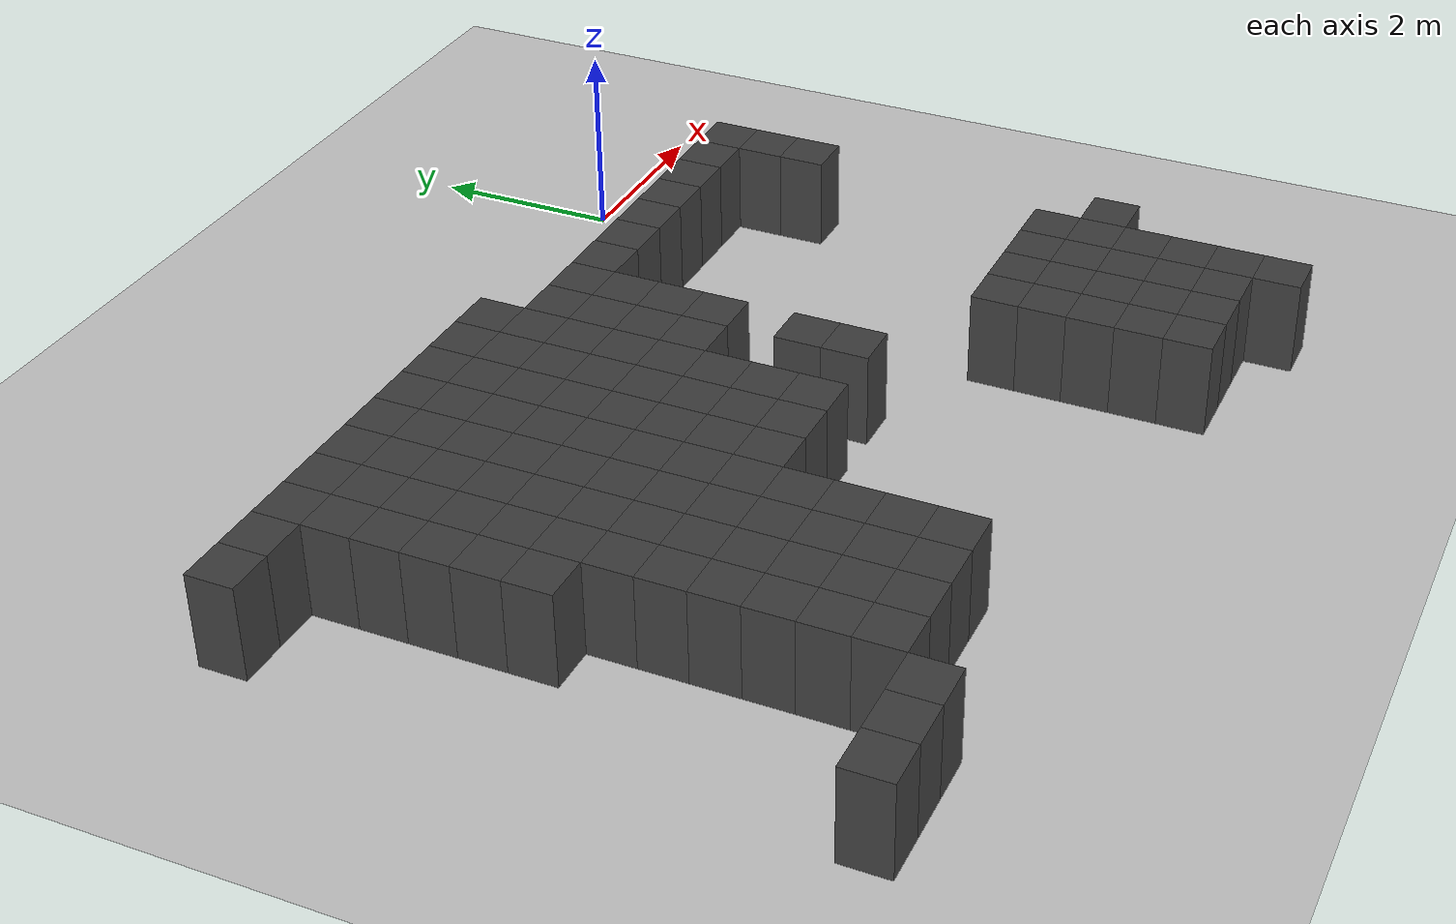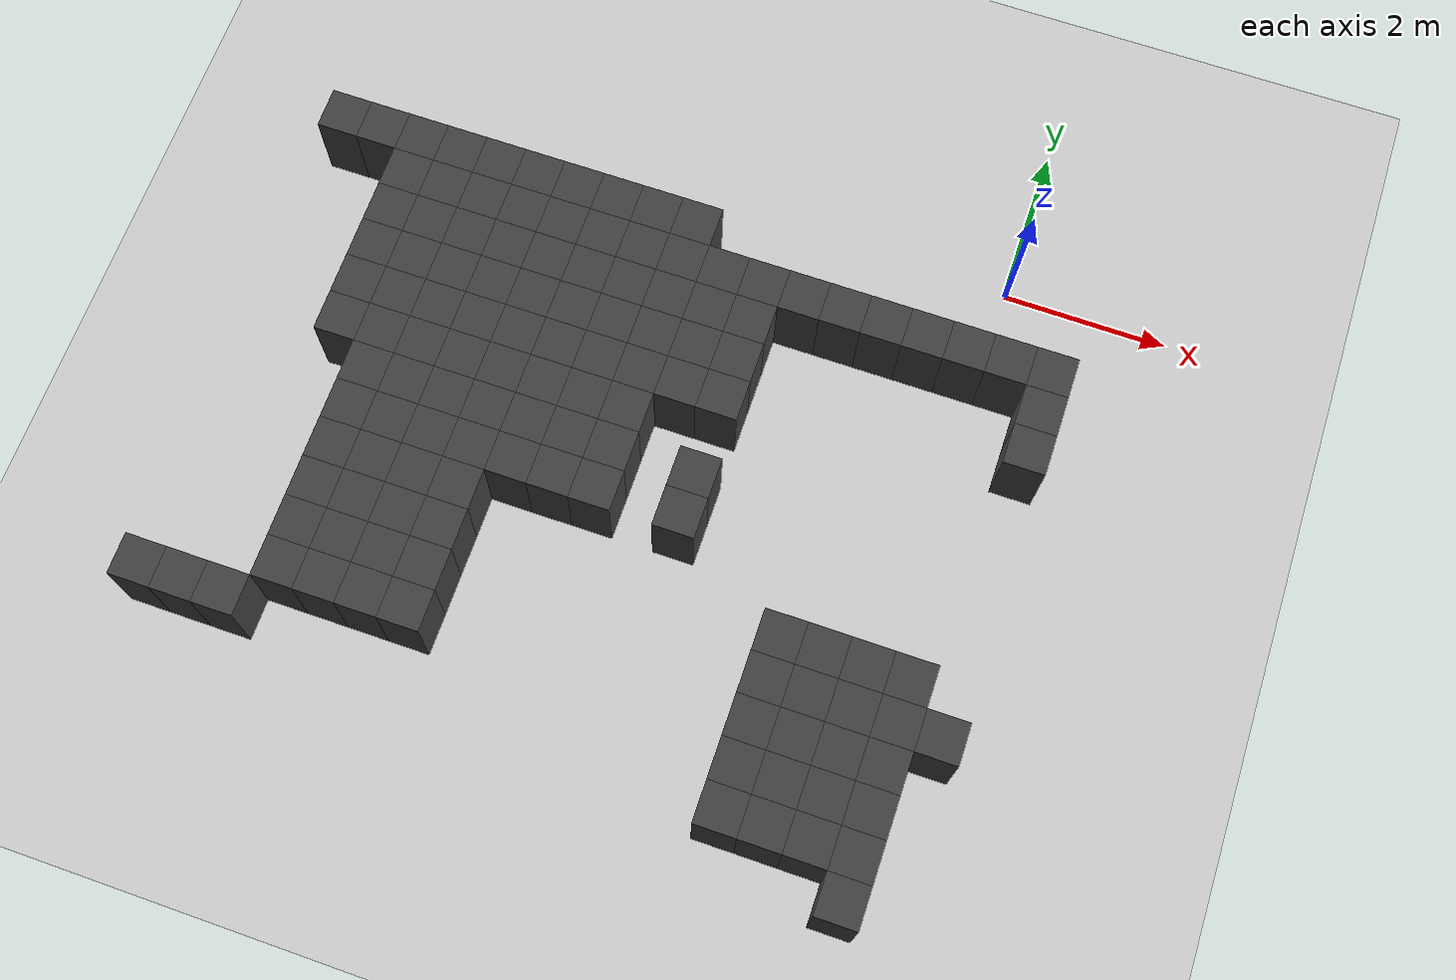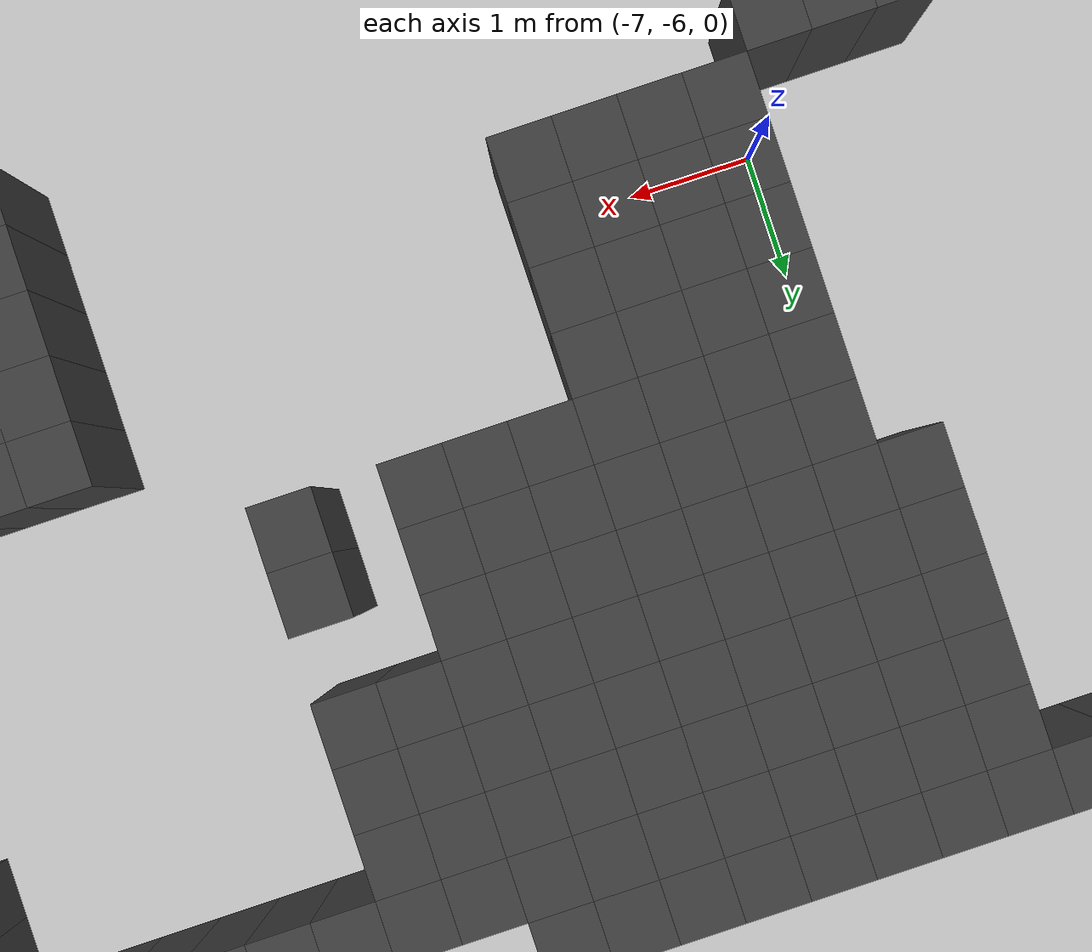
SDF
<sdf version="1.7">
 <world name="map_14668">
  <model name="ground_plane">
   <static>true</static>
   <link name="link">
    <collision name="collision">
     <geometry><plane><normal>0 0 1</normal><size>200 200</size></plane></geometry>
    </collision>
    <visual name="visual">
     <geometry><plane><normal>0 0 1</normal><size>200 200</size></plane></geometry>
     <material><ambient>0.8 0.8 0.8 1</ambient><diffuse>0.8 0.8 0.8 1</diffuse></material>
    </visual>
   </link>
  </model>
  <model name="maze_environment">
   <static>true</static>
   <link name="wall_1007">
    <pose>-8.250 -0.750 0.500 0 0 0</pose>
    <collision name="col"><geometry><box><size>0.5 0.5 1.0</size></box></geometry></collision>
    <visual name="vis">
     <geometry><box><size>0.5 0.5 1.0</size></box></geometry>
     <material><ambient>0.15 0.15 0.15 1</ambient><diffuse>0.25 0.25 0.25 1</diffuse></material>
    </visual>
   </link>
   <link name="wall_1008">
    <pose>-7.750 -0.750 0.500 0 0 0</pose>
    <collision name="col"><geometry><box><size>0.5 0.5 1.0</size></box></geometry></collision>
    <visual name="vis">
     <geometry><box><size>0.5 0.5 1.0</size></box></geometry>
     <material><ambient>0.15 0.15 0.15 1</ambient><diffuse>0.25 0.25 0.25 1</diffuse></material>
    </visual>
   </link>
   <link name="wall_1009">
    <pose>-7.250 -0.750 0.500 0 0 0</pose>
    <collision name="col"><geometry><box><size>0.5 0.5 1.0</size></box></geometry></collision>
    <visual name="vis">
     <geometry><box><size>0.5 0.5 1.0</size></box></geometry>
     <material><ambient>0.15 0.15 0.15 1</ambient><diffuse>0.25 0.25 0.25 1</diffuse></material>
    </visual>
   </link>
   <link name="wall_1010">
    <pose>-6.750 -0.750 0.500 0 0 0</pose>
    <collision name="col"><geometry><box><size>0.5 0.5 1.0</size></box></geometry></collision>
    <visual name="vis">
     <geometry><box><size>0.5 0.5 1.0</size></box></geometry>
     <material><ambient>0.15 0.15 0.15 1</ambient><diffuse>0.25 0.25 0.25 1</diffuse></material>
    </visual>
   </link>
   <link name="wall_1011">
    <pose>-6.250 -0.750 0.500 0 0 0</pose>
    <collision name="col"><geometry><box><size>0.5 0.5 1.0</size></box></geometry></collision>
    <visual name="vis">
     <geometry><box><size>0.5 0.5 1.0</size></box></geometry>
     <material><ambient>0.15 0.15 0.15 1</ambient><diffuse>0.25 0.25 0.25 1</diffuse></material>
    </visual>
   </link>
   <link name="wall_1012">
    <pose>-5.750 -0.750 0.500 0 0 0</pose>
    <collision name="col"><geometry><box><size>0.5 0.5 1.0</size></box></geometry></collision>
    <visual name="vis">
     <geometry><box><size>0.5 0.5 1.0</size></box></geometry>
     <material><ambient>0.15 0.15 0.15 1</ambient><diffuse>0.25 0.25 0.25 1</diffuse></material>
    </visual>
   </link>
   <link name="wall_1013">
    <pose>-5.250 -0.750 0.500 0 0 0</pose>
    <collision name="col"><geometry><box><size>0.5 0.5 1.0</size></box></geometry></collision>
    <visual name="vis">
     <geometry><box><size>0.5 0.5 1.0</size></box></geometry>
     <material><ambient>0.15 0.15 0.15 1</ambient><diffuse>0.25 0.25 0.25 1</diffuse></material>
    </visual>
   </link>
   <link name="wall_1014">
    <pose>-4.750 -0.750 0.500 0 0 0</pose>
    <collision name="col"><geometry><box><size>0.5 0.5 1.0</size></box></geometry></collision>
    <visual name="vis">
     <geometry><box><size>0.5 0.5 1.0</size></box></geometry>
     <material><ambient>0.15 0.15 0.15 1</ambient><diffuse>0.25 0.25 0.25 1</diffuse></material>
    </visual>
   </link>
   <link name="wall_1015">
    <pose>-4.250 -0.750 0.500 0 0 0</pose>
    <collision name="col"><geometry><box><size>0.5 0.5 1.0</size></box></geometry></collision>
    <visual name="vis">
     <geometry><box><size>0.5 0.5 1.0</size></box></geometry>
     <material><ambient>0.15 0.15 0.15 1</ambient><diffuse>0.25 0.25 0.25 1</diffuse></material>
    </visual>
   </link>
   <link name="wall_1016">
    <pose>-3.750 -0.750 0.500 0 0 0</pose>
    <collision name="col"><geometry><box><size>0.5 0.5 1.0</size></box></geometry></collision>
    <visual name="vis">
     <geometry><box><size>0.5 0.5 1.0</size></box></geometry>
     <material><ambient>0.15 0.15 0.15 1</ambient><diffuse>0.25 0.25 0.25 1</diffuse></material>
    </visual>
   </link>
   <link name="wall_1051">
    <pose>-7.250 -1.250 0.500 0 0 0</pose>
    <collision name="col"><geometry><box><size>0.5 0.5 1.0</size></box></geometry></collision>
    <visual name="vis">
     <geometry><box><size>0.5 0.5 1.0</size></box></geometry>
     <material><ambient>0.15 0.15 0.15 1</ambient><diffuse>0.25 0.25 0.25 1</diffuse></material>
    </visual>
   </link>
   <link name="wall_1052">
    <pose>-6.750 -1.250 0.500 0 0 0</pose>
    <collision name="col"><geometry><box><size>0.5 0.5 1.0</size></box></geometry></collision>
    <visual name="vis">
     <geometry><box><size>0.5 0.5 1.0</size></box></geometry>
     <material><ambient>0.15 0.15 0.15 1</ambient><diffuse>0.25 0.25 0.25 1</diffuse></material>
    </visual>
   </link>
   <link name="wall_1053">
    <pose>-6.250 -1.250 0.500 0 0 0</pose>
    <collision name="col"><geometry><box><size>0.5 0.5 1.0</size></box></geometry></collision>
    <visual name="vis">
     <geometry><box><size>0.5 0.5 1.0</size></box></geometry>
     <material><ambient>0.15 0.15 0.15 1</ambient><diffuse>0.25 0.25 0.25 1</diffuse></material>
    </visual>
   </link>
   <link name="wall_1054">
    <pose>-5.750 -1.250 0.500 0 0 0</pose>
    <collision name="col"><geometry><box><size>0.5 0.5 1.0</size></box></geometry></collision>
    <visual name="vis">
     <geometry><box><size>0.5 0.5 1.0</size></box></geometry>
     <material><ambient>0.15 0.15 0.15 1</ambient><diffuse>0.25 0.25 0.25 1</diffuse></material>
    </visual>
   </link>
   <link name="wall_1055">
    <pose>-5.250 -1.250 0.500 0 0 0</pose>
    <collision name="col"><geometry><box><size>0.5 0.5 1.0</size></box></geometry></collision>
    <visual name="vis">
     <geometry><box><size>0.5 0.5 1.0</size></box></geometry>
     <material><ambient>0.15 0.15 0.15 1</ambient><diffuse>0.25 0.25 0.25 1</diffuse></material>
    </visual>
   </link>
   <link name="wall_1056">
    <pose>-4.750 -1.250 0.500 0 0 0</pose>
    <collision name="col"><geometry><box><size>0.5 0.5 1.0</size></box></geometry></collision>
    <visual name="vis">
     <geometry><box><size>0.5 0.5 1.0</size></box></geometry>
     <material><ambient>0.15 0.15 0.15 1</ambient><diffuse>0.25 0.25 0.25 1</diffuse></material>
    </visual>
   </link>
   <link name="wall_1057">
    <pose>-4.250 -1.250 0.500 0 0 0</pose>
    <collision name="col"><geometry><box><size>0.5 0.5 1.0</size></box></geometry></collision>
    <visual name="vis">
     <geometry><box><size>0.5 0.5 1.0</size></box></geometry>
     <material><ambient>0.15 0.15 0.15 1</ambient><diffuse>0.25 0.25 0.25 1</diffuse></material>
    </visual>
   </link>
   <link name="wall_1058">
    <pose>-3.750 -1.250 0.500 0 0 0</pose>
    <collision name="col"><geometry><box><size>0.5 0.5 1.0</size></box></geometry></collision>
    <visual name="vis">
     <geometry><box><size>0.5 0.5 1.0</size></box></geometry>
     <material><ambient>0.15 0.15 0.15 1</ambient><diffuse>0.25 0.25 0.25 1</diffuse></material>
    </visual>
   </link>
   <link name="wall_1059">
    <pose>-3.250 -1.250 0.500 0 0 0</pose>
    <collision name="col"><geometry><box><size>0.5 0.5 1.0</size></box></geometry></collision>
    <visual name="vis">
     <geometry><box><size>0.5 0.5 1.0</size></box></geometry>
     <material><ambient>0.15 0.15 0.15 1</ambient><diffuse>0.25 0.25 0.25 1</diffuse></material>
    </visual>
   </link>
   <link name="wall_1060">
    <pose>-2.750 -1.250 0.500 0 0 0</pose>
    <collision name="col"><geometry><box><size>0.5 0.5 1.0</size></box></geometry></collision>
    <visual name="vis">
     <geometry><box><size>0.5 0.5 1.0</size></box></geometry>
     <material><ambient>0.15 0.15 0.15 1</ambient><diffuse>0.25 0.25 0.25 1</diffuse></material>
    </visual>
   </link>
   <link name="wall_1061">
    <pose>-2.250 -1.250 0.500 0 0 0</pose>
    <collision name="col"><geometry><box><size>0.5 0.5 1.0</size></box></geometry></collision>
    <visual name="vis">
     <geometry><box><size>0.5 0.5 1.0</size></box></geometry>
     <material><ambient>0.15 0.15 0.15 1</ambient><diffuse>0.25 0.25 0.25 1</diffuse></material>
    </visual>
   </link>
   <link name="wall_1062">
    <pose>-1.750 -1.250 0.500 0 0 0</pose>
    <collision name="col"><geometry><box><size>0.5 0.5 1.0</size></box></geometry></collision>
    <visual name="vis">
     <geometry><box><size>0.5 0.5 1.0</size></box></geometry>
     <material><ambient>0.15 0.15 0.15 1</ambient><diffuse>0.25 0.25 0.25 1</diffuse></material>
    </visual>
   </link>
   <link name="wall_1063">
    <pose>-1.250 -1.250 0.500 0 0 0</pose>
    <collision name="col"><geometry><box><size>0.5 0.5 1.0</size></box></geometry></collision>
    <visual name="vis">
     <geometry><box><size>0.5 0.5 1.0</size></box></geometry>
     <material><ambient>0.15 0.15 0.15 1</ambient><diffuse>0.25 0.25 0.25 1</diffuse></material>
    </visual>
   </link>
   <link name="wall_1064">
    <pose>-0.750 -1.250 0.500 0 0 0</pose>
    <collision name="col"><geometry><box><size>0.5 0.5 1.0</size></box></geometry></collision>
    <visual name="vis">
     <geometry><box><size>0.5 0.5 1.0</size></box></geometry>
     <material><ambient>0.15 0.15 0.15 1</ambient><diffuse>0.25 0.25 0.25 1</diffuse></material>
    </visual>
   </link>
   <link name="wall_1065">
    <pose>-0.250 -1.250 0.500 0 0 0</pose>
    <collision name="col"><geometry><box><size>0.5 0.5 1.0</size></box></geometry></collision>
    <visual name="vis">
     <geometry><box><size>0.5 0.5 1.0</size></box></geometry>
     <material><ambient>0.15 0.15 0.15 1</ambient><diffuse>0.25 0.25 0.25 1</diffuse></material>
    </visual>
   </link>
   <link name="wall_1066">
    <pose>0.250 -1.250 0.500 0 0 0</pose>
    <collision name="col"><geometry><box><size>0.5 0.5 1.0</size></box></geometry></collision>
    <visual name="vis">
     <geometry><box><size>0.5 0.5 1.0</size></box></geometry>
     <material><ambient>0.15 0.15 0.15 1</ambient><diffuse>0.25 0.25 0.25 1</diffuse></material>
    </visual>
   </link>
   <link name="wall_1067">
    <pose>0.750 -1.250 0.500 0 0 0</pose>
    <collision name="col"><geometry><box><size>0.5 0.5 1.0</size></box></geometry></collision>
    <visual name="vis">
     <geometry><box><size>0.5 0.5 1.0</size></box></geometry>
     <material><ambient>0.15 0.15 0.15 1</ambient><diffuse>0.25 0.25 0.25 1</diffuse></material>
    </visual>
   </link>
   <link name="wall_1093">
    <pose>-7.250 -1.750 0.500 0 0 0</pose>
    <collision name="col"><geometry><box><size>0.5 0.5 1.0</size></box></geometry></collision>
    <visual name="vis">
     <geometry><box><size>0.5 0.5 1.0</size></box></geometry>
     <material><ambient>0.15 0.15 0.15 1</ambient><diffuse>0.25 0.25 0.25 1</diffuse></material>
    </visual>
   </link>
   <link name="wall_1094">
    <pose>-6.750 -1.750 0.500 0 0 0</pose>
    <collision name="col"><geometry><box><size>0.5 0.5 1.0</size></box></geometry></collision>
    <visual name="vis">
     <geometry><box><size>0.5 0.5 1.0</size></box></geometry>
     <material><ambient>0.15 0.15 0.15 1</ambient><diffuse>0.25 0.25 0.25 1</diffuse></material>
    </visual>
   </link>
   <link name="wall_1095">
    <pose>-6.250 -1.750 0.500 0 0 0</pose>
    <collision name="col"><geometry><box><size>0.5 0.5 1.0</size></box></geometry></collision>
    <visual name="vis">
     <geometry><box><size>0.5 0.5 1.0</size></box></geometry>
     <material><ambient>0.15 0.15 0.15 1</ambient><diffuse>0.25 0.25 0.25 1</diffuse></material>
    </visual>
   </link>
   <link name="wall_1096">
    <pose>-5.750 -1.750 0.500 0 0 0</pose>
    <collision name="col"><geometry><box><size>0.5 0.5 1.0</size></box></geometry></collision>
    <visual name="vis">
     <geometry><box><size>0.5 0.5 1.0</size></box></geometry>
     <material><ambient>0.15 0.15 0.15 1</ambient><diffuse>0.25 0.25 0.25 1</diffuse></material>
    </visual>
   </link>
   <link name="wall_1097">
    <pose>-5.250 -1.750 0.500 0 0 0</pose>
    <collision name="col"><geometry><box><size>0.5 0.5 1.0</size></box></geometry></collision>
    <visual name="vis">
     <geometry><box><size>0.5 0.5 1.0</size></box></geometry>
     <material><ambient>0.15 0.15 0.15 1</ambient><diffuse>0.25 0.25 0.25 1</diffuse></material>
    </visual>
   </link>
   <link name="wall_1098">
    <pose>-4.750 -1.750 0.500 0 0 0</pose>
    <collision name="col"><geometry><box><size>0.5 0.5 1.0</size></box></geometry></collision>
    <visual name="vis">
     <geometry><box><size>0.5 0.5 1.0</size></box></geometry>
     <material><ambient>0.15 0.15 0.15 1</ambient><diffuse>0.25 0.25 0.25 1</diffuse></material>
    </visual>
   </link>
   <link name="wall_1099">
    <pose>-4.250 -1.750 0.500 0 0 0</pose>
    <collision name="col"><geometry><box><size>0.5 0.5 1.0</size></box></geometry></collision>
    <visual name="vis">
     <geometry><box><size>0.5 0.5 1.0</size></box></geometry>
     <material><ambient>0.15 0.15 0.15 1</ambient><diffuse>0.25 0.25 0.25 1</diffuse></material>
    </visual>
   </link>
   <link name="wall_1100">
    <pose>-3.750 -1.750 0.500 0 0 0</pose>
    <collision name="col"><geometry><box><size>0.5 0.5 1.0</size></box></geometry></collision>
    <visual name="vis">
     <geometry><box><size>0.5 0.5 1.0</size></box></geometry>
     <material><ambient>0.15 0.15 0.15 1</ambient><diffuse>0.25 0.25 0.25 1</diffuse></material>
    </visual>
   </link>
   <link name="wall_1101">
    <pose>-3.250 -1.750 0.500 0 0 0</pose>
    <collision name="col"><geometry><box><size>0.5 0.5 1.0</size></box></geometry></collision>
    <visual name="vis">
     <geometry><box><size>0.5 0.5 1.0</size></box></geometry>
     <material><ambient>0.15 0.15 0.15 1</ambient><diffuse>0.25 0.25 0.25 1</diffuse></material>
    </visual>
   </link>
   <link name="wall_1102">
    <pose>-2.750 -1.750 0.500 0 0 0</pose>
    <collision name="col"><geometry><box><size>0.5 0.5 1.0</size></box></geometry></collision>
    <visual name="vis">
     <geometry><box><size>0.5 0.5 1.0</size></box></geometry>
     <material><ambient>0.15 0.15 0.15 1</ambient><diffuse>0.25 0.25 0.25 1</diffuse></material>
    </visual>
   </link>
   <link name="wall_1103">
    <pose>0.750 -1.750 0.500 0 0 0</pose>
    <collision name="col"><geometry><box><size>0.5 0.5 1.0</size></box></geometry></collision>
    <visual name="vis">
     <geometry><box><size>0.5 0.5 1.0</size></box></geometry>
     <material><ambient>0.15 0.15 0.15 1</ambient><diffuse>0.25 0.25 0.25 1</diffuse></material>
    </visual>
   </link>
   <link name="wall_1129">
    <pose>-7.250 -2.250 0.500 0 0 0</pose>
    <collision name="col"><geometry><box><size>0.5 0.5 1.0</size></box></geometry></collision>
    <visual name="vis">
     <geometry><box><size>0.5 0.5 1.0</size></box></geometry>
     <material><ambient>0.15 0.15 0.15 1</ambient><diffuse>0.25 0.25 0.25 1</diffuse></material>
    </visual>
   </link>
   <link name="wall_1130">
    <pose>-6.750 -2.250 0.500 0 0 0</pose>
    <collision name="col"><geometry><box><size>0.5 0.5 1.0</size></box></geometry></collision>
    <visual name="vis">
     <geometry><box><size>0.5 0.5 1.0</size></box></geometry>
     <material><ambient>0.15 0.15 0.15 1</ambient><diffuse>0.25 0.25 0.25 1</diffuse></material>
    </visual>
   </link>
   <link name="wall_1131">
    <pose>-6.250 -2.250 0.500 0 0 0</pose>
    <collision name="col"><geometry><box><size>0.5 0.5 1.0</size></box></geometry></collision>
    <visual name="vis">
     <geometry><box><size>0.5 0.5 1.0</size></box></geometry>
     <material><ambient>0.15 0.15 0.15 1</ambient><diffuse>0.25 0.25 0.25 1</diffuse></material>
    </visual>
   </link>
   <link name="wall_1132">
    <pose>-5.750 -2.250 0.500 0 0 0</pose>
    <collision name="col"><geometry><box><size>0.5 0.5 1.0</size></box></geometry></collision>
    <visual name="vis">
     <geometry><box><size>0.5 0.5 1.0</size></box></geometry>
     <material><ambient>0.15 0.15 0.15 1</ambient><diffuse>0.25 0.25 0.25 1</diffuse></material>
    </visual>
   </link>
   <link name="wall_1133">
    <pose>-5.250 -2.250 0.500 0 0 0</pose>
    <collision name="col"><geometry><box><size>0.5 0.5 1.0</size></box></geometry></collision>
    <visual name="vis">
     <geometry><box><size>0.5 0.5 1.0</size></box></geometry>
     <material><ambient>0.15 0.15 0.15 1</ambient><diffuse>0.25 0.25 0.25 1</diffuse></material>
    </visual>
   </link>
   <link name="wall_1134">
    <pose>-4.750 -2.250 0.500 0 0 0</pose>
    <collision name="col"><geometry><box><size>0.5 0.5 1.0</size></box></geometry></collision>
    <visual name="vis">
     <geometry><box><size>0.5 0.5 1.0</size></box></geometry>
     <material><ambient>0.15 0.15 0.15 1</ambient><diffuse>0.25 0.25 0.25 1</diffuse></material>
    </visual>
   </link>
   <link name="wall_1135">
    <pose>-4.250 -2.250 0.500 0 0 0</pose>
    <collision name="col"><geometry><box><size>0.5 0.5 1.0</size></box></geometry></collision>
    <visual name="vis">
     <geometry><box><size>0.5 0.5 1.0</size></box></geometry>
     <material><ambient>0.15 0.15 0.15 1</ambient><diffuse>0.25 0.25 0.25 1</diffuse></material>
    </visual>
   </link>
   <link name="wall_1136">
    <pose>-3.750 -2.250 0.500 0 0 0</pose>
    <collision name="col"><geometry><box><size>0.5 0.5 1.0</size></box></geometry></collision>
    <visual name="vis">
     <geometry><box><size>0.5 0.5 1.0</size></box></geometry>
     <material><ambient>0.15 0.15 0.15 1</ambient><diffuse>0.25 0.25 0.25 1</diffuse></material>
    </visual>
   </link>
   <link name="wall_1137">
    <pose>-3.250 -2.250 0.500 0 0 0</pose>
    <collision name="col"><geometry><box><size>0.5 0.5 1.0</size></box></geometry></collision>
    <visual name="vis">
     <geometry><box><size>0.5 0.5 1.0</size></box></geometry>
     <material><ambient>0.15 0.15 0.15 1</ambient><diffuse>0.25 0.25 0.25 1</diffuse></material>
    </visual>
   </link>
   <link name="wall_1138">
    <pose>-2.750 -2.250 0.500 0 0 0</pose>
    <collision name="col"><geometry><box><size>0.5 0.5 1.0</size></box></geometry></collision>
    <visual name="vis">
     <geometry><box><size>0.5 0.5 1.0</size></box></geometry>
     <material><ambient>0.15 0.15 0.15 1</ambient><diffuse>0.25 0.25 0.25 1</diffuse></material>
    </visual>
   </link>
   <link name="wall_1139">
    <pose>0.750 -2.250 0.500 0 0 0</pose>
    <collision name="col"><geometry><box><size>0.5 0.5 1.0</size></box></geometry></collision>
    <visual name="vis">
     <geometry><box><size>0.5 0.5 1.0</size></box></geometry>
     <material><ambient>0.15 0.15 0.15 1</ambient><diffuse>0.25 0.25 0.25 1</diffuse></material>
    </visual>
   </link>
   <link name="wall_1159">
    <pose>-7.250 -2.750 0.500 0 0 0</pose>
    <collision name="col"><geometry><box><size>0.5 0.5 1.0</size></box></geometry></collision>
    <visual name="vis">
     <geometry><box><size>0.5 0.5 1.0</size></box></geometry>
     <material><ambient>0.15 0.15 0.15 1</ambient><diffuse>0.25 0.25 0.25 1</diffuse></material>
    </visual>
   </link>
   <link name="wall_1160">
    <pose>-6.750 -2.750 0.500 0 0 0</pose>
    <collision name="col"><geometry><box><size>0.5 0.5 1.0</size></box></geometry></collision>
    <visual name="vis">
     <geometry><box><size>0.5 0.5 1.0</size></box></geometry>
     <material><ambient>0.15 0.15 0.15 1</ambient><diffuse>0.25 0.25 0.25 1</diffuse></material>
    </visual>
   </link>
   <link name="wall_1161">
    <pose>-6.250 -2.750 0.500 0 0 0</pose>
    <collision name="col"><geometry><box><size>0.5 0.5 1.0</size></box></geometry></collision>
    <visual name="vis">
     <geometry><box><size>0.5 0.5 1.0</size></box></geometry>
     <material><ambient>0.15 0.15 0.15 1</ambient><diffuse>0.25 0.25 0.25 1</diffuse></material>
    </visual>
   </link>
   <link name="wall_1162">
    <pose>-5.750 -2.750 0.500 0 0 0</pose>
    <collision name="col"><geometry><box><size>0.5 0.5 1.0</size></box></geometry></collision>
    <visual name="vis">
     <geometry><box><size>0.5 0.5 1.0</size></box></geometry>
     <material><ambient>0.15 0.15 0.15 1</ambient><diffuse>0.25 0.25 0.25 1</diffuse></material>
    </visual>
   </link>
   <link name="wall_1163">
    <pose>-5.250 -2.750 0.500 0 0 0</pose>
    <collision name="col"><geometry><box><size>0.5 0.5 1.0</size></box></geometry></collision>
    <visual name="vis">
     <geometry><box><size>0.5 0.5 1.0</size></box></geometry>
     <material><ambient>0.15 0.15 0.15 1</ambient><diffuse>0.25 0.25 0.25 1</diffuse></material>
    </visual>
   </link>
   <link name="wall_1164">
    <pose>-4.750 -2.750 0.500 0 0 0</pose>
    <collision name="col"><geometry><box><size>0.5 0.5 1.0</size></box></geometry></collision>
    <visual name="vis">
     <geometry><box><size>0.5 0.5 1.0</size></box></geometry>
     <material><ambient>0.15 0.15 0.15 1</ambient><diffuse>0.25 0.25 0.25 1</diffuse></material>
    </visual>
   </link>
   <link name="wall_1165">
    <pose>-4.250 -2.750 0.500 0 0 0</pose>
    <collision name="col"><geometry><box><size>0.5 0.5 1.0</size></box></geometry></collision>
    <visual name="vis">
     <geometry><box><size>0.5 0.5 1.0</size></box></geometry>
     <material><ambient>0.15 0.15 0.15 1</ambient><diffuse>0.25 0.25 0.25 1</diffuse></material>
    </visual>
   </link>
   <link name="wall_1166">
    <pose>-3.750 -2.750 0.500 0 0 0</pose>
    <collision name="col"><geometry><box><size>0.5 0.5 1.0</size></box></geometry></collision>
    <visual name="vis">
     <geometry><box><size>0.5 0.5 1.0</size></box></geometry>
     <material><ambient>0.15 0.15 0.15 1</ambient><diffuse>0.25 0.25 0.25 1</diffuse></material>
    </visual>
   </link>
   <link name="wall_1167">
    <pose>-3.250 -2.750 0.500 0 0 0</pose>
    <collision name="col"><geometry><box><size>0.5 0.5 1.0</size></box></geometry></collision>
    <visual name="vis">
     <geometry><box><size>0.5 0.5 1.0</size></box></geometry>
     <material><ambient>0.15 0.15 0.15 1</ambient><diffuse>0.25 0.25 0.25 1</diffuse></material>
    </visual>
   </link>
   <link name="wall_1168">
    <pose>-2.750 -2.750 0.500 0 0 0</pose>
    <collision name="col"><geometry><box><size>0.5 0.5 1.0</size></box></geometry></collision>
    <visual name="vis">
     <geometry><box><size>0.5 0.5 1.0</size></box></geometry>
     <material><ambient>0.15 0.15 0.15 1</ambient><diffuse>0.25 0.25 0.25 1</diffuse></material>
    </visual>
   </link>
   <link name="wall_1182">
    <pose>-7.250 -3.250 0.500 0 0 0</pose>
    <collision name="col"><geometry><box><size>0.5 0.5 1.0</size></box></geometry></collision>
    <visual name="vis">
     <geometry><box><size>0.5 0.5 1.0</size></box></geometry>
     <material><ambient>0.15 0.15 0.15 1</ambient><diffuse>0.25 0.25 0.25 1</diffuse></material>
    </visual>
   </link>
   <link name="wall_1183">
    <pose>-6.750 -3.250 0.500 0 0 0</pose>
    <collision name="col"><geometry><box><size>0.5 0.5 1.0</size></box></geometry></collision>
    <visual name="vis">
     <geometry><box><size>0.5 0.5 1.0</size></box></geometry>
     <material><ambient>0.15 0.15 0.15 1</ambient><diffuse>0.25 0.25 0.25 1</diffuse></material>
    </visual>
   </link>
   <link name="wall_1184">
    <pose>-6.250 -3.250 0.500 0 0 0</pose>
    <collision name="col"><geometry><box><size>0.5 0.5 1.0</size></box></geometry></collision>
    <visual name="vis">
     <geometry><box><size>0.5 0.5 1.0</size></box></geometry>
     <material><ambient>0.15 0.15 0.15 1</ambient><diffuse>0.25 0.25 0.25 1</diffuse></material>
    </visual>
   </link>
   <link name="wall_1185">
    <pose>-5.750 -3.250 0.500 0 0 0</pose>
    <collision name="col"><geometry><box><size>0.5 0.5 1.0</size></box></geometry></collision>
    <visual name="vis">
     <geometry><box><size>0.5 0.5 1.0</size></box></geometry>
     <material><ambient>0.15 0.15 0.15 1</ambient><diffuse>0.25 0.25 0.25 1</diffuse></material>
    </visual>
   </link>
   <link name="wall_1186">
    <pose>-5.250 -3.250 0.500 0 0 0</pose>
    <collision name="col"><geometry><box><size>0.5 0.5 1.0</size></box></geometry></collision>
    <visual name="vis">
     <geometry><box><size>0.5 0.5 1.0</size></box></geometry>
     <material><ambient>0.15 0.15 0.15 1</ambient><diffuse>0.25 0.25 0.25 1</diffuse></material>
    </visual>
   </link>
   <link name="wall_1187">
    <pose>-4.750 -3.250 0.500 0 0 0</pose>
    <collision name="col"><geometry><box><size>0.5 0.5 1.0</size></box></geometry></collision>
    <visual name="vis">
     <geometry><box><size>0.5 0.5 1.0</size></box></geometry>
     <material><ambient>0.15 0.15 0.15 1</ambient><diffuse>0.25 0.25 0.25 1</diffuse></material>
    </visual>
   </link>
   <link name="wall_1188">
    <pose>-4.250 -3.250 0.500 0 0 0</pose>
    <collision name="col"><geometry><box><size>0.5 0.5 1.0</size></box></geometry></collision>
    <visual name="vis">
     <geometry><box><size>0.5 0.5 1.0</size></box></geometry>
     <material><ambient>0.15 0.15 0.15 1</ambient><diffuse>0.25 0.25 0.25 1</diffuse></material>
    </visual>
   </link>
   <link name="wall_1189">
    <pose>-3.750 -3.250 0.500 0 0 0</pose>
    <collision name="col"><geometry><box><size>0.5 0.5 1.0</size></box></geometry></collision>
    <visual name="vis">
     <geometry><box><size>0.5 0.5 1.0</size></box></geometry>
     <material><ambient>0.15 0.15 0.15 1</ambient><diffuse>0.25 0.25 0.25 1</diffuse></material>
    </visual>
   </link>
   <link name="wall_1203">
    <pose>-6.750 -3.750 0.500 0 0 0</pose>
    <collision name="col"><geometry><box><size>0.5 0.5 1.0</size></box></geometry></collision>
    <visual name="vis">
     <geometry><box><size>0.5 0.5 1.0</size></box></geometry>
     <material><ambient>0.15 0.15 0.15 1</ambient><diffuse>0.25 0.25 0.25 1</diffuse></material>
    </visual>
   </link>
   <link name="wall_1204">
    <pose>-6.250 -3.750 0.500 0 0 0</pose>
    <collision name="col"><geometry><box><size>0.5 0.5 1.0</size></box></geometry></collision>
    <visual name="vis">
     <geometry><box><size>0.5 0.5 1.0</size></box></geometry>
     <material><ambient>0.15 0.15 0.15 1</ambient><diffuse>0.25 0.25 0.25 1</diffuse></material>
    </visual>
   </link>
   <link name="wall_1205">
    <pose>-5.750 -3.750 0.500 0 0 0</pose>
    <collision name="col"><geometry><box><size>0.5 0.5 1.0</size></box></geometry></collision>
    <visual name="vis">
     <geometry><box><size>0.5 0.5 1.0</size></box></geometry>
     <material><ambient>0.15 0.15 0.15 1</ambient><diffuse>0.25 0.25 0.25 1</diffuse></material>
    </visual>
   </link>
   <link name="wall_1206">
    <pose>-5.250 -3.750 0.500 0 0 0</pose>
    <collision name="col"><geometry><box><size>0.5 0.5 1.0</size></box></geometry></collision>
    <visual name="vis">
     <geometry><box><size>0.5 0.5 1.0</size></box></geometry>
     <material><ambient>0.15 0.15 0.15 1</ambient><diffuse>0.25 0.25 0.25 1</diffuse></material>
    </visual>
   </link>
   <link name="wall_1207">
    <pose>-4.750 -3.750 0.500 0 0 0</pose>
    <collision name="col"><geometry><box><size>0.5 0.5 1.0</size></box></geometry></collision>
    <visual name="vis">
     <geometry><box><size>0.5 0.5 1.0</size></box></geometry>
     <material><ambient>0.15 0.15 0.15 1</ambient><diffuse>0.25 0.25 0.25 1</diffuse></material>
    </visual>
   </link>
   <link name="wall_1208">
    <pose>-4.250 -3.750 0.500 0 0 0</pose>
    <collision name="col"><geometry><box><size>0.5 0.5 1.0</size></box></geometry></collision>
    <visual name="vis">
     <geometry><box><size>0.5 0.5 1.0</size></box></geometry>
     <material><ambient>0.15 0.15 0.15 1</ambient><diffuse>0.25 0.25 0.25 1</diffuse></material>
    </visual>
   </link>
   <link name="wall_1209">
    <pose>-3.750 -3.750 0.500 0 0 0</pose>
    <collision name="col"><geometry><box><size>0.5 0.5 1.0</size></box></geometry></collision>
    <visual name="vis">
     <geometry><box><size>0.5 0.5 1.0</size></box></geometry>
     <material><ambient>0.15 0.15 0.15 1</ambient><diffuse>0.25 0.25 0.25 1</diffuse></material>
    </visual>
   </link>
   <link name="wall_1210">
    <pose>-2.750 -3.750 0.500 0 0 0</pose>
    <collision name="col"><geometry><box><size>0.5 0.5 1.0</size></box></geometry></collision>
    <visual name="vis">
     <geometry><box><size>0.5 0.5 1.0</size></box></geometry>
     <material><ambient>0.15 0.15 0.15 1</ambient><diffuse>0.25 0.25 0.25 1</diffuse></material>
    </visual>
   </link>
   <link name="wall_1224">
    <pose>-6.750 -4.250 0.500 0 0 0</pose>
    <collision name="col"><geometry><box><size>0.5 0.5 1.0</size></box></geometry></collision>
    <visual name="vis">
     <geometry><box><size>0.5 0.5 1.0</size></box></geometry>
     <material><ambient>0.15 0.15 0.15 1</ambient><diffuse>0.25 0.25 0.25 1</diffuse></material>
    </visual>
   </link>
   <link name="wall_1225">
    <pose>-6.250 -4.250 0.500 0 0 0</pose>
    <collision name="col"><geometry><box><size>0.5 0.5 1.0</size></box></geometry></collision>
    <visual name="vis">
     <geometry><box><size>0.5 0.5 1.0</size></box></geometry>
     <material><ambient>0.15 0.15 0.15 1</ambient><diffuse>0.25 0.25 0.25 1</diffuse></material>
    </visual>
   </link>
   <link name="wall_1226">
    <pose>-5.750 -4.250 0.500 0 0 0</pose>
    <collision name="col"><geometry><box><size>0.5 0.5 1.0</size></box></geometry></collision>
    <visual name="vis">
     <geometry><box><size>0.5 0.5 1.0</size></box></geometry>
     <material><ambient>0.15 0.15 0.15 1</ambient><diffuse>0.25 0.25 0.25 1</diffuse></material>
    </visual>
   </link>
   <link name="wall_1227">
    <pose>-5.250 -4.250 0.500 0 0 0</pose>
    <collision name="col"><geometry><box><size>0.5 0.5 1.0</size></box></geometry></collision>
    <visual name="vis">
     <geometry><box><size>0.5 0.5 1.0</size></box></geometry>
     <material><ambient>0.15 0.15 0.15 1</ambient><diffuse>0.25 0.25 0.25 1</diffuse></material>
    </visual>
   </link>
   <link name="wall_1228">
    <pose>-4.750 -4.250 0.500 0 0 0</pose>
    <collision name="col"><geometry><box><size>0.5 0.5 1.0</size></box></geometry></collision>
    <visual name="vis">
     <geometry><box><size>0.5 0.5 1.0</size></box></geometry>
     <material><ambient>0.15 0.15 0.15 1</ambient><diffuse>0.25 0.25 0.25 1</diffuse></material>
    </visual>
   </link>
   <link name="wall_1229">
    <pose>-4.250 -4.250 0.500 0 0 0</pose>
    <collision name="col"><geometry><box><size>0.5 0.5 1.0</size></box></geometry></collision>
    <visual name="vis">
     <geometry><box><size>0.5 0.5 1.0</size></box></geometry>
     <material><ambient>0.15 0.15 0.15 1</ambient><diffuse>0.25 0.25 0.25 1</diffuse></material>
    </visual>
   </link>
   <link name="wall_1230">
    <pose>-3.750 -4.250 0.500 0 0 0</pose>
    <collision name="col"><geometry><box><size>0.5 0.5 1.0</size></box></geometry></collision>
    <visual name="vis">
     <geometry><box><size>0.5 0.5 1.0</size></box></geometry>
     <material><ambient>0.15 0.15 0.15 1</ambient><diffuse>0.25 0.25 0.25 1</diffuse></material>
    </visual>
   </link>
   <link name="wall_1231">
    <pose>-2.750 -4.250 0.500 0 0 0</pose>
    <collision name="col"><geometry><box><size>0.5 0.5 1.0</size></box></geometry></collision>
    <visual name="vis">
     <geometry><box><size>0.5 0.5 1.0</size></box></geometry>
     <material><ambient>0.15 0.15 0.15 1</ambient><diffuse>0.25 0.25 0.25 1</diffuse></material>
    </visual>
   </link>
   <link name="wall_1243">
    <pose>-6.750 -4.750 0.500 0 0 0</pose>
    <collision name="col"><geometry><box><size>0.5 0.5 1.0</size></box></geometry></collision>
    <visual name="vis">
     <geometry><box><size>0.5 0.5 1.0</size></box></geometry>
     <material><ambient>0.15 0.15 0.15 1</ambient><diffuse>0.25 0.25 0.25 1</diffuse></material>
    </visual>
   </link>
   <link name="wall_1244">
    <pose>-6.250 -4.750 0.500 0 0 0</pose>
    <collision name="col"><geometry><box><size>0.5 0.5 1.0</size></box></geometry></collision>
    <visual name="vis">
     <geometry><box><size>0.5 0.5 1.0</size></box></geometry>
     <material><ambient>0.15 0.15 0.15 1</ambient><diffuse>0.25 0.25 0.25 1</diffuse></material>
    </visual>
   </link>
   <link name="wall_1245">
    <pose>-5.750 -4.750 0.500 0 0 0</pose>
    <collision name="col"><geometry><box><size>0.5 0.5 1.0</size></box></geometry></collision>
    <visual name="vis">
     <geometry><box><size>0.5 0.5 1.0</size></box></geometry>
     <material><ambient>0.15 0.15 0.15 1</ambient><diffuse>0.25 0.25 0.25 1</diffuse></material>
    </visual>
   </link>
   <link name="wall_1246">
    <pose>-5.250 -4.750 0.500 0 0 0</pose>
    <collision name="col"><geometry><box><size>0.5 0.5 1.0</size></box></geometry></collision>
    <visual name="vis">
     <geometry><box><size>0.5 0.5 1.0</size></box></geometry>
     <material><ambient>0.15 0.15 0.15 1</ambient><diffuse>0.25 0.25 0.25 1</diffuse></material>
    </visual>
   </link>
   <link name="wall_1261">
    <pose>-6.750 -5.250 0.500 0 0 0</pose>
    <collision name="col"><geometry><box><size>0.5 0.5 1.0</size></box></geometry></collision>
    <visual name="vis">
     <geometry><box><size>0.5 0.5 1.0</size></box></geometry>
     <material><ambient>0.15 0.15 0.15 1</ambient><diffuse>0.25 0.25 0.25 1</diffuse></material>
    </visual>
   </link>
   <link name="wall_1262">
    <pose>-6.250 -5.250 0.500 0 0 0</pose>
    <collision name="col"><geometry><box><size>0.5 0.5 1.0</size></box></geometry></collision>
    <visual name="vis">
     <geometry><box><size>0.5 0.5 1.0</size></box></geometry>
     <material><ambient>0.15 0.15 0.15 1</ambient><diffuse>0.25 0.25 0.25 1</diffuse></material>
    </visual>
   </link>
   <link name="wall_1263">
    <pose>-5.750 -5.250 0.500 0 0 0</pose>
    <collision name="col"><geometry><box><size>0.5 0.5 1.0</size></box></geometry></collision>
    <visual name="vis">
     <geometry><box><size>0.5 0.5 1.0</size></box></geometry>
     <material><ambient>0.15 0.15 0.15 1</ambient><diffuse>0.25 0.25 0.25 1</diffuse></material>
    </visual>
   </link>
   <link name="wall_1264">
    <pose>-5.250 -5.250 0.500 0 0 0</pose>
    <collision name="col"><geometry><box><size>0.5 0.5 1.0</size></box></geometry></collision>
    <visual name="vis">
     <geometry><box><size>0.5 0.5 1.0</size></box></geometry>
     <material><ambient>0.15 0.15 0.15 1</ambient><diffuse>0.25 0.25 0.25 1</diffuse></material>
    </visual>
   </link>
   <link name="wall_1265">
    <pose>-1.250 -5.250 0.500 0 0 0</pose>
    <collision name="col"><geometry><box><size>0.5 0.5 1.0</size></box></geometry></collision>
    <visual name="vis">
     <geometry><box><size>0.5 0.5 1.0</size></box></geometry>
     <material><ambient>0.15 0.15 0.15 1</ambient><diffuse>0.25 0.25 0.25 1</diffuse></material>
    </visual>
   </link>
   <link name="wall_1266">
    <pose>-0.750 -5.250 0.500 0 0 0</pose>
    <collision name="col"><geometry><box><size>0.5 0.5 1.0</size></box></geometry></collision>
    <visual name="vis">
     <geometry><box><size>0.5 0.5 1.0</size></box></geometry>
     <material><ambient>0.15 0.15 0.15 1</ambient><diffuse>0.25 0.25 0.25 1</diffuse></material>
    </visual>
   </link>
   <link name="wall_1267">
    <pose>-0.250 -5.250 0.500 0 0 0</pose>
    <collision name="col"><geometry><box><size>0.5 0.5 1.0</size></box></geometry></collision>
    <visual name="vis">
     <geometry><box><size>0.5 0.5 1.0</size></box></geometry>
     <material><ambient>0.15 0.15 0.15 1</ambient><diffuse>0.25 0.25 0.25 1</diffuse></material>
    </visual>
   </link>
   <link name="wall_1268">
    <pose>0.250 -5.250 0.500 0 0 0</pose>
    <collision name="col"><geometry><box><size>0.5 0.5 1.0</size></box></geometry></collision>
    <visual name="vis">
     <geometry><box><size>0.5 0.5 1.0</size></box></geometry>
     <material><ambient>0.15 0.15 0.15 1</ambient><diffuse>0.25 0.25 0.25 1</diffuse></material>
    </visual>
   </link>
   <link name="wall_1283">
    <pose>-6.750 -5.750 0.500 0 0 0</pose>
    <collision name="col"><geometry><box><size>0.5 0.5 1.0</size></box></geometry></collision>
    <visual name="vis">
     <geometry><box><size>0.5 0.5 1.0</size></box></geometry>
     <material><ambient>0.15 0.15 0.15 1</ambient><diffuse>0.25 0.25 0.25 1</diffuse></material>
    </visual>
   </link>
   <link name="wall_1284">
    <pose>-6.250 -5.750 0.500 0 0 0</pose>
    <collision name="col"><geometry><box><size>0.5 0.5 1.0</size></box></geometry></collision>
    <visual name="vis">
     <geometry><box><size>0.5 0.5 1.0</size></box></geometry>
     <material><ambient>0.15 0.15 0.15 1</ambient><diffuse>0.25 0.25 0.25 1</diffuse></material>
    </visual>
   </link>
   <link name="wall_1285">
    <pose>-5.750 -5.750 0.500 0 0 0</pose>
    <collision name="col"><geometry><box><size>0.5 0.5 1.0</size></box></geometry></collision>
    <visual name="vis">
     <geometry><box><size>0.5 0.5 1.0</size></box></geometry>
     <material><ambient>0.15 0.15 0.15 1</ambient><diffuse>0.25 0.25 0.25 1</diffuse></material>
    </visual>
   </link>
   <link name="wall_1286">
    <pose>-5.250 -5.750 0.500 0 0 0</pose>
    <collision name="col"><geometry><box><size>0.5 0.5 1.0</size></box></geometry></collision>
    <visual name="vis">
     <geometry><box><size>0.5 0.5 1.0</size></box></geometry>
     <material><ambient>0.15 0.15 0.15 1</ambient><diffuse>0.25 0.25 0.25 1</diffuse></material>
    </visual>
   </link>
   <link name="wall_1287">
    <pose>-1.250 -5.750 0.500 0 0 0</pose>
    <collision name="col"><geometry><box><size>0.5 0.5 1.0</size></box></geometry></collision>
    <visual name="vis">
     <geometry><box><size>0.5 0.5 1.0</size></box></geometry>
     <material><ambient>0.15 0.15 0.15 1</ambient><diffuse>0.25 0.25 0.25 1</diffuse></material>
    </visual>
   </link>
   <link name="wall_1288">
    <pose>-0.750 -5.750 0.500 0 0 0</pose>
    <collision name="col"><geometry><box><size>0.5 0.5 1.0</size></box></geometry></collision>
    <visual name="vis">
     <geometry><box><size>0.5 0.5 1.0</size></box></geometry>
     <material><ambient>0.15 0.15 0.15 1</ambient><diffuse>0.25 0.25 0.25 1</diffuse></material>
    </visual>
   </link>
   <link name="wall_1289">
    <pose>-0.250 -5.750 0.500 0 0 0</pose>
    <collision name="col"><geometry><box><size>0.5 0.5 1.0</size></box></geometry></collision>
    <visual name="vis">
     <geometry><box><size>0.5 0.5 1.0</size></box></geometry>
     <material><ambient>0.15 0.15 0.15 1</ambient><diffuse>0.25 0.25 0.25 1</diffuse></material>
    </visual>
   </link>
   <link name="wall_1290">
    <pose>0.250 -5.750 0.500 0 0 0</pose>
    <collision name="col"><geometry><box><size>0.5 0.5 1.0</size></box></geometry></collision>
    <visual name="vis">
     <geometry><box><size>0.5 0.5 1.0</size></box></geometry>
     <material><ambient>0.15 0.15 0.15 1</ambient><diffuse>0.25 0.25 0.25 1</diffuse></material>
    </visual>
   </link>
   <link name="wall_1291">
    <pose>0.750 -5.750 0.500 0 0 0</pose>
    <collision name="col"><geometry><box><size>0.5 0.5 1.0</size></box></geometry></collision>
    <visual name="vis">
     <geometry><box><size>0.5 0.5 1.0</size></box></geometry>
     <material><ambient>0.15 0.15 0.15 1</ambient><diffuse>0.25 0.25 0.25 1</diffuse></material>
    </visual>
   </link>
   <link name="wall_1311">
    <pose>-6.750 -6.250 0.500 0 0 0</pose>
    <collision name="col"><geometry><box><size>0.5 0.5 1.0</size></box></geometry></collision>
    <visual name="vis">
     <geometry><box><size>0.5 0.5 1.0</size></box></geometry>
     <material><ambient>0.15 0.15 0.15 1</ambient><diffuse>0.25 0.25 0.25 1</diffuse></material>
    </visual>
   </link>
   <link name="wall_1312">
    <pose>-6.250 -6.250 0.500 0 0 0</pose>
    <collision name="col"><geometry><box><size>0.5 0.5 1.0</size></box></geometry></collision>
    <visual name="vis">
     <geometry><box><size>0.5 0.5 1.0</size></box></geometry>
     <material><ambient>0.15 0.15 0.15 1</ambient><diffuse>0.25 0.25 0.25 1</diffuse></material>
    </visual>
   </link>
   <link name="wall_1313">
    <pose>-5.750 -6.250 0.500 0 0 0</pose>
    <collision name="col"><geometry><box><size>0.5 0.5 1.0</size></box></geometry></collision>
    <visual name="vis">
     <geometry><box><size>0.5 0.5 1.0</size></box></geometry>
     <material><ambient>0.15 0.15 0.15 1</ambient><diffuse>0.25 0.25 0.25 1</diffuse></material>
    </visual>
   </link>
   <link name="wall_1314">
    <pose>-5.250 -6.250 0.500 0 0 0</pose>
    <collision name="col"><geometry><box><size>0.5 0.5 1.0</size></box></geometry></collision>
    <visual name="vis">
     <geometry><box><size>0.5 0.5 1.0</size></box></geometry>
     <material><ambient>0.15 0.15 0.15 1</ambient><diffuse>0.25 0.25 0.25 1</diffuse></material>
    </visual>
   </link>
   <link name="wall_1315">
    <pose>-1.250 -6.250 0.500 0 0 0</pose>
    <collision name="col"><geometry><box><size>0.5 0.5 1.0</size></box></geometry></collision>
    <visual name="vis">
     <geometry><box><size>0.5 0.5 1.0</size></box></geometry>
     <material><ambient>0.15 0.15 0.15 1</ambient><diffuse>0.25 0.25 0.25 1</diffuse></material>
    </visual>
   </link>
   <link name="wall_1316">
    <pose>-0.750 -6.250 0.500 0 0 0</pose>
    <collision name="col"><geometry><box><size>0.5 0.5 1.0</size></box></geometry></collision>
    <visual name="vis">
     <geometry><box><size>0.5 0.5 1.0</size></box></geometry>
     <material><ambient>0.15 0.15 0.15 1</ambient><diffuse>0.25 0.25 0.25 1</diffuse></material>
    </visual>
   </link>
   <link name="wall_1317">
    <pose>-0.250 -6.250 0.500 0 0 0</pose>
    <collision name="col"><geometry><box><size>0.5 0.5 1.0</size></box></geometry></collision>
    <visual name="vis">
     <geometry><box><size>0.5 0.5 1.0</size></box></geometry>
     <material><ambient>0.15 0.15 0.15 1</ambient><diffuse>0.25 0.25 0.25 1</diffuse></material>
    </visual>
   </link>
   <link name="wall_1318">
    <pose>0.250 -6.250 0.500 0 0 0</pose>
    <collision name="col"><geometry><box><size>0.5 0.5 1.0</size></box></geometry></collision>
    <visual name="vis">
     <geometry><box><size>0.5 0.5 1.0</size></box></geometry>
     <material><ambient>0.15 0.15 0.15 1</ambient><diffuse>0.25 0.25 0.25 1</diffuse></material>
    </visual>
   </link>
   <link name="wall_1342">
    <pose>-8.250 -6.750 0.500 0 0 0</pose>
    <collision name="col"><geometry><box><size>0.5 0.5 1.0</size></box></geometry></collision>
    <visual name="vis">
     <geometry><box><size>0.5 0.5 1.0</size></box></geometry>
     <material><ambient>0.15 0.15 0.15 1</ambient><diffuse>0.25 0.25 0.25 1</diffuse></material>
    </visual>
   </link>
   <link name="wall_1343">
    <pose>-7.750 -6.750 0.500 0 0 0</pose>
    <collision name="col"><geometry><box><size>0.5 0.5 1.0</size></box></geometry></collision>
    <visual name="vis">
     <geometry><box><size>0.5 0.5 1.0</size></box></geometry>
     <material><ambient>0.15 0.15 0.15 1</ambient><diffuse>0.25 0.25 0.25 1</diffuse></material>
    </visual>
   </link>
   <link name="wall_1344">
    <pose>-7.250 -6.750 0.500 0 0 0</pose>
    <collision name="col"><geometry><box><size>0.5 0.5 1.0</size></box></geometry></collision>
    <visual name="vis">
     <geometry><box><size>0.5 0.5 1.0</size></box></geometry>
     <material><ambient>0.15 0.15 0.15 1</ambient><diffuse>0.25 0.25 0.25 1</diffuse></material>
    </visual>
   </link>
   <link name="wall_1345">
    <pose>-1.250 -6.750 0.500 0 0 0</pose>
    <collision name="col"><geometry><box><size>0.5 0.5 1.0</size></box></geometry></collision>
    <visual name="vis">
     <geometry><box><size>0.5 0.5 1.0</size></box></geometry>
     <material><ambient>0.15 0.15 0.15 1</ambient><diffuse>0.25 0.25 0.25 1</diffuse></material>
    </visual>
   </link>
   <link name="wall_1346">
    <pose>-0.750 -6.750 0.500 0 0 0</pose>
    <collision name="col"><geometry><box><size>0.5 0.5 1.0</size></box></geometry></collision>
    <visual name="vis">
     <geometry><box><size>0.5 0.5 1.0</size></box></geometry>
     <material><ambient>0.15 0.15 0.15 1</ambient><diffuse>0.25 0.25 0.25 1</diffuse></material>
    </visual>
   </link>
   <link name="wall_1347">
    <pose>-0.250 -6.750 0.500 0 0 0</pose>
    <collision name="col"><geometry><box><size>0.5 0.5 1.0</size></box></geometry></collision>
    <visual name="vis">
     <geometry><box><size>0.5 0.5 1.0</size></box></geometry>
     <material><ambient>0.15 0.15 0.15 1</ambient><diffuse>0.25 0.25 0.25 1</diffuse></material>
    </visual>
   </link>
   <link name="wall_1348">
    <pose>0.250 -6.750 0.500 0 0 0</pose>
    <collision name="col"><geometry><box><size>0.5 0.5 1.0</size></box></geometry></collision>
    <visual name="vis">
     <geometry><box><size>0.5 0.5 1.0</size></box></geometry>
     <material><ambient>0.15 0.15 0.15 1</ambient><diffuse>0.25 0.25 0.25 1</diffuse></material>
    </visual>
   </link>
   <link name="wall_1372">
    <pose>-1.250 -7.250 0.500 0 0 0</pose>
    <collision name="col"><geometry><box><size>0.5 0.5 1.0</size></box></geometry></collision>
    <visual name="vis">
     <geometry><box><size>0.5 0.5 1.0</size></box></geometry>
     <material><ambient>0.15 0.15 0.15 1</ambient><diffuse>0.25 0.25 0.25 1</diffuse></material>
    </visual>
   </link>
   <link name="wall_1373">
    <pose>-0.750 -7.250 0.500 0 0 0</pose>
    <collision name="col"><geometry><box><size>0.5 0.5 1.0</size></box></geometry></collision>
    <visual name="vis">
     <geometry><box><size>0.5 0.5 1.0</size></box></geometry>
     <material><ambient>0.15 0.15 0.15 1</ambient><diffuse>0.25 0.25 0.25 1</diffuse></material>
    </visual>
   </link>
   <link name="wall_1374">
    <pose>-0.250 -7.250 0.500 0 0 0</pose>
    <collision name="col"><geometry><box><size>0.5 0.5 1.0</size></box></geometry></collision>
    <visual name="vis">
     <geometry><box><size>0.5 0.5 1.0</size></box></geometry>
     <material><ambient>0.15 0.15 0.15 1</ambient><diffuse>0.25 0.25 0.25 1</diffuse></material>
    </visual>
   </link>
   <link name="wall_1375">
    <pose>0.250 -7.250 0.500 0 0 0</pose>
    <collision name="col"><geometry><box><size>0.5 0.5 1.0</size></box></geometry></collision>
    <visual name="vis">
     <geometry><box><size>0.5 0.5 1.0</size></box></geometry>
     <material><ambient>0.15 0.15 0.15 1</ambient><diffuse>0.25 0.25 0.25 1</diffuse></material>
    </visual>
   </link>
   <link name="wall_1400">
    <pose>0.250 -7.750 0.500 0 0 0</pose>
    <collision name="col"><geometry><box><size>0.5 0.5 1.0</size></box></geometry></collision>
    <visual name="vis">
     <geometry><box><size>0.5 0.5 1.0</size></box></geometry>
     <material><ambient>0.15 0.15 0.15 1</ambient><diffuse>0.25 0.25 0.25 1</diffuse></material>
    </visual>
   </link>
  </model>
 </world>
</sdf>
